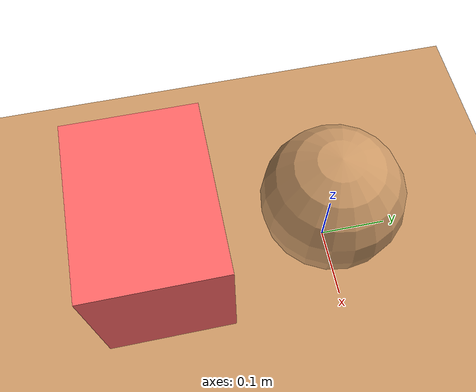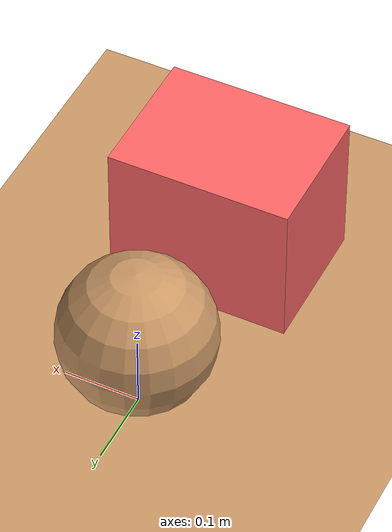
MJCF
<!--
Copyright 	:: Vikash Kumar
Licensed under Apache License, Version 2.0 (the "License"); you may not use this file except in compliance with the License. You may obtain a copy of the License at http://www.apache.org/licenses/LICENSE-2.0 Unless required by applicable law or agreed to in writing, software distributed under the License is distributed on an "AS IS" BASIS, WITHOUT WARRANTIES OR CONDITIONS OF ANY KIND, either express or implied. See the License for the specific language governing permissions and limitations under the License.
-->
<mujoco model='pusher-v1.5'>
    <compiler inertiafromgeom='true' angle='radian'/>

    <default>
        <joint limited='true' damping='1' armature='0'/>
        <geom contype='1' conaffinity='1' condim='3' rgba='0.8 0.6 .4 1'
        	margin="0.001" solref=".02 1" solimp=".8 .8 .01" material="geom"/>
        <motor ctrlrange='-1 1'  ctrllimited='true'/>
    </default>

    <option timestep='0.002' iterations="50" solver="PGS">
        <flag energy="enable" fwdinv="enable"/>
    </option>

    <visual>
        <map fogstart="3" fogend="5" force="0.1" znear="0.1"/>
        <quality shadowsize="2048" offsamples="8"/>
        <global offwidth="800" offheight="800"/>
    </visual>

    <asset>
        <texture name="skybox" type="skybox" builtin="gradient" rgb1=".08 .09 .10" rgb2="0 0 0"
               width="800" height="800" mark="random" markrgb=".8 .8 .8"/>
        <texture name="texgeom" type="cube" builtin="flat" mark="cross" width="127" height="1278"
            rgb1="0.8 0.6 0.4" rgb2="0.8 0.6 0.4" markrgb="1 1 1" random="0.01"/>
        <texture name="texplane" type="2d" builtin="checker" rgb1=".2 .3 .4" rgb2=".1 0.15 0.2"
            width="512" height="512"/>

        <material name='MatPlane' reflectance='0.5' texture="texplane" texrepeat="1 1" texuniform="true"/>
        <material name='geom' texture="texgeom" texuniform="true"/>
    </asset>

    <worldbody>
        <light directional='false' diffuse='.8 .8 .8' specular='0.3 0.3 0.3' pos='0 0 4.0' dir='0 -.15 -1'/>
		<geom name='floor' pos='0 0 0' size='10 10 .125' type='plane' material="MatPlane" condim='3'/>

		<body name='boss' pos='0 0 .12'>
			<geom name='ball' type='sphere' size='.1'/>
			<!--joint name='ballx' type='slide' axis='1 0 0' limited='false' damping='01'/-->
			<joint name='bally' type='slide' axis='0 1 0' limited='false' damping='01'/>
			<joint name='ballz' type='hinge' axis='0 0 1' limited='false' damping='01'/>
		</body>

		<body name='engineer' pos='0 -.15 0'>
			<geom pos='0 -.1 .12' type='box' size='.12 .09 .1' rgba='1 .4 .4 1'/>
			<joint name='runaround' type='free' limited='false' damping='0'/>
		</body>
	</worldbody>

    <actuator>
		<!--motor name='ballax' 	gear='50' joint='ballx'/-->
		<motor name='ballay'    gear='50' joint='bally' />
    </actuator>

	<sensor>
		<!--jointpos name="ballx"	joint="ballx"/-->
		<jointpos name="bally"	joint="bally"/>
	</sensor>

</mujoco>
